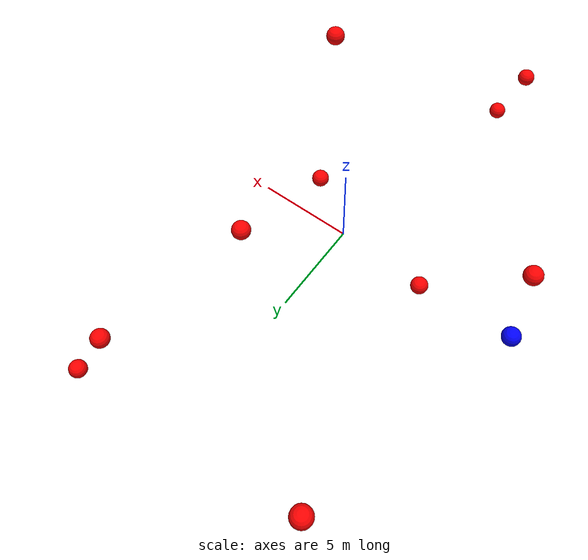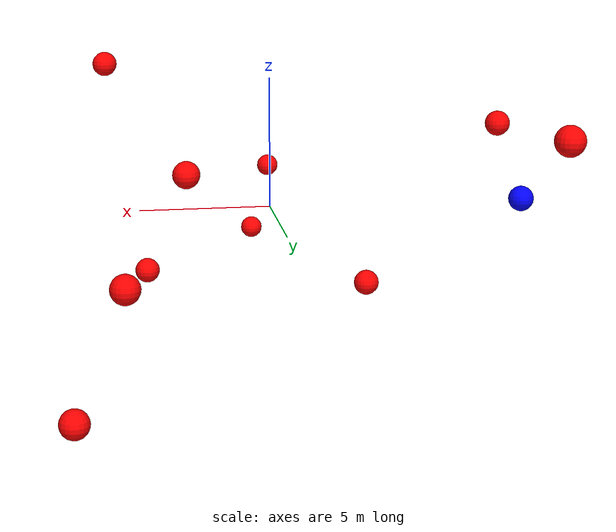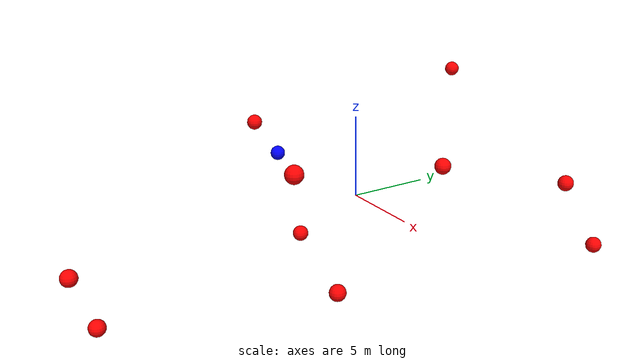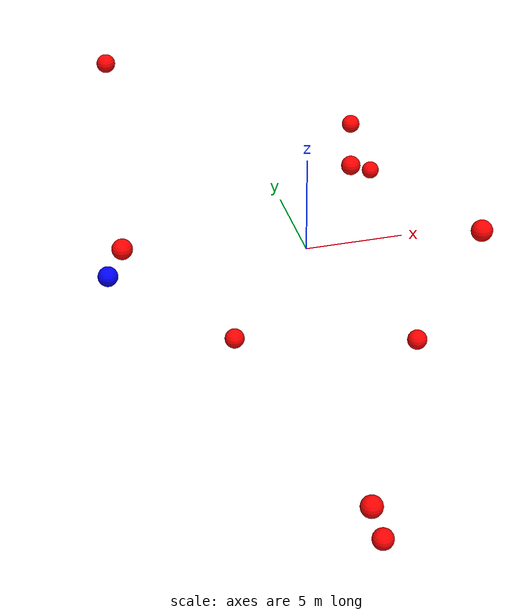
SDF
<?xml version="1.0" ?>
<sdf version="1.8">
    <world name="3d_world">
        <physics name="1ms" type="ode">
            <max_step_size>0.001</max_step_size>
            <real_time_factor>1.0</real_time_factor>
            <real_time_update_rate>1000.0</real_time_update_rate>
        </physics>
        <gravity>0 0 0</gravity>

        <plugin
            filename="gz-sim-physics-system"
            name="gz::sim::v8::systems::Physics">
        </plugin>
        <plugin
            filename="libignition-gazebo-user-commands-system.so"
            name="ignition::gazebo::systems::UserCommands">
        </plugin>
        <plugin
            filename="gz-sim-scene-broadcaster-system"
            name="gz::sim::systems::SceneBroadcaster">
        </plugin>
        <plugin
            filename="gz-sim-sensors-system"
            name="gz::sim::systems::Sensors">
            <render_engine>ogre2</render_engine>
        </plugin>

        <light type="directional" name="sun">
            <cast_shadows>true</cast_shadows>
            <pose>0 0 10 0 0 0</pose>
            <diffuse>0.8 0.8 0.8 1</diffuse>
            <specular>0.2 0.2 0.2 1</specular>
            <attenuation>
                <range>1000</range>
                <constant>0.9</constant>
                <linear>0.01</linear>
                <quadratic>0.001</quadratic>
            </attenuation>
            <direction>-0.5 0.1 -0.9</direction>
        </light>

        <!-- AGENTE -->
        <model name='agente' canonical_link='chassis'>
            <pose relative_to='world'>-10.0 0 0.0 0 0 0</pose>
            <link name='chassis'>
                <pose relative_to='__model__'>0.0 0 0.0 0 0 0</pose>
                <inertial>
                    <mass>1.14395</mass>
                    <inertia>
                        <ixx>0.095329</ixx>
                        <ixy>0</ixy>
                        <ixz>0</ixz>
                        <iyy>0.381317</iyy>
                        <iyz>0</iyz>
                        <izz>0.476646</izz>
                    </inertia>
                </inertial>
                <visual name='visual'>
                    <geometry>
                        <sphere>
                            <radius>0.5</radius>
                        </sphere>
                    </geometry>
                    <material>
                        <ambient>0.0 0.0 1.0 1</ambient>
                        <diffuse>0.0 0.0 1.0 1</diffuse>
                        <specular>0.0 0.0 1.0 1</specular>
                    </material>
                </visual>
                <collision name='collision'>
                    <geometry>
                        <sphere>
                            <radius>0.5</radius>
                        </sphere>
                    </geometry>
                </collision>
                <enable_gravity>false</enable_gravity>
            </link>

            <link name='lidar_link'>
                <pose relative_to='chassis'>0.0 0 0.1 0 0 0</pose>
                <inertial>
                    <mass>0.1</mass>
                    <inertia>
                        <ixx>0.000166667</ixx>
                        <iyy>0.000166667</iyy>
                        <izz>0.000166667</izz>
                    </inertia>
                </inertial>
                <collision name='collision'>
                    <geometry>
                        <cylinder>
                            <radius>0.05</radius>
                            <length>0.1</length>
                        </cylinder>
                    </geometry>
                </collision>
                <visual name='visual'>
                    <geometry>
                        <cylinder>
                            <radius>0.05</radius>
                            <length>0.1</length>
                        </cylinder>
                    </geometry>
                    <material>
                        <ambient>0.0 1.0 0.0 1</ambient>
                        <diffuse>0.0 1.0 0.0 1</diffuse>
                        <specular>0.0 1.0 0.0 1</specular>
                    </material>
                </visual>
                <sensor name="lidar" type="gpu_lidar">
                    <topic>scan</topic>
                    <update_rate>10</update_rate>
                    <lidar>
                        <scan>
                            <horizontal>
                                <samples>5000</samples>
                                <resolution>1</resolution>
                                <min_angle>-3.14159</min_angle>
                                <max_angle>3.14159</max_angle>
                            </horizontal>
                        </scan>
                        <range>
                            <min>0.1</min>
                            <max>10.0</max>
                            <resolution>0.01</resolution>
                        </range>
                    </lidar>
                    <visualize>true</visualize>
                    <always_on>true</always_on>
                    <update_rate>10</update_rate>
                    <pose_frame>lidar</pose_frame>
                </sensor>
                <enable_gravity>false</enable_gravity>
            </link>

            <joint name="lidar_joint" type="fixed">
                <parent>chassis</parent>
                <child>lidar_link</child>
            </joint>

            <plugin
                filename="ignition-gazebo-joint-state-publisher-system"
                name="ignition::gazebo::systems::JointStatePublisher">
            </plugin>
            <plugin
                filename="ignition-gazebo-odometry-publisher-system"
                name="ignition::gazebo::systems::OdometryPublisher">
                <dimensions>3</dimensions>
            </plugin>
            <plugin
                filename="ignition-gazebo-velocity-control-system"
                name="ignition::gazebo::systems::VelocityControl">
                <initial_linear>0.0 0 0</initial_linear>
                <initial_angular>0 0 0.0</initial_angular>
            </plugin>
            <plugin
                filename="libignition-gazebo-pose-publisher-system.so"
                name="ignition::gazebo::systems::PosePublisher">
                <topic>/agente/pose</topic>
                <frame_id>agente</frame_id>
                <update_rate>30</update_rate>
            </plugin>
        </model>

        <!-- OBSTACLE 1 -->
        <model name='obstacle_1' canonical_link='obstacle'>
            <static>false</static>
            <pose relative_to='world'>-4.12 -1.62 -3.64 0 0 0</pose>
            <link name='obstacle'>
                <pose relative_to='__model__'>0.0 0 0.0 0 0 0</pose>
                <visual name='visual'>
                    <geometry>
                        <sphere>
                            <radius>0.50</radius>
                        </sphere>
                    </geometry>
                    <material>
                        <ambient>1.0 0.0 0.0 1</ambient>
                        <diffuse>1.0 0.0 0.0 1</diffuse>
                        <specular>1.0 0.0 0.0 1</specular>
                    </material>
                </visual>
                <collision name='collision'>
                    <geometry>
                        <sphere>
                            <radius>0.50</radius>
                        </sphere>
                    </geometry>
                </collision>
                <enable_gravity>false</enable_gravity>
            </link>

            <plugin
                filename="ignition-gazebo-velocity-control-system"
                name="ignition::gazebo::systems::VelocityControl">
                <initial_linear>1.66 0.23 0.52</initial_linear>
                <initial_angular>0 0 0</initial_angular>
            </plugin>

            <plugin
                filename="ignition-gazebo-odometry-publisher-system"
                name="ignition::gazebo::systems::OdometryPublisher">
                <dimensions>3</dimensions>
            </plugin>
        </model>

        <!-- OBSTACLE 2 -->
        <model name='obstacle_2' canonical_link='obstacle'>
            <static>false</static>
            <pose relative_to='world'>3.48 3.92 2.15 0 0 0</pose>
            <link name='obstacle'>
                <pose relative_to='__model__'>0.0 0 0.0 0 0 0</pose>
                <visual name='visual'>
                    <geometry>
                        <sphere>
                            <radius>0.50</radius>
                        </sphere>
                    </geometry>
                    <material>
                        <ambient>1.0 0.0 0.0 1</ambient>
                        <diffuse>1.0 0.0 0.0 1</diffuse>
                        <specular>1.0 0.0 0.0 1</specular>
                    </material>
                </visual>
                <collision name='collision'>
                    <geometry>
                        <sphere>
                            <radius>0.50</radius>
                        </sphere>
                    </geometry>
                </collision>
                <enable_gravity>false</enable_gravity>
            </link>

            <plugin
                filename="ignition-gazebo-velocity-control-system"
                name="ignition::gazebo::systems::VelocityControl">
                <initial_linear>-0.83 -0.97 -0.53</initial_linear>
                <initial_angular>0 0 0</initial_angular>
            </plugin>

            <plugin
                filename="ignition-gazebo-odometry-publisher-system"
                name="ignition::gazebo::systems::OdometryPublisher">
                <dimensions>3</dimensions>
            </plugin>
        </model>

        <!-- OBSTACLE 3 -->
        <model name='obstacle_3' canonical_link='obstacle'>
            <static>false</static>
            <pose relative_to='world'>-2.00 -17.10 -1.80 0 0 0</pose>
            <link name='obstacle'>
                <pose relative_to='__model__'>0.0 0 0.0 0 0 0</pose>
                <visual name='visual'>
                    <geometry>
                        <sphere>
                            <radius>0.50</radius>
                        </sphere>
                    </geometry>
                    <material>
                        <ambient>1.0 0.0 0.0 1</ambient>
                        <diffuse>1.0 0.0 0.0 1</diffuse>
                        <specular>1.0 0.0 0.0 1</specular>
                    </material>
                </visual>
                <collision name='collision'>
                    <geometry>
                        <sphere>
                            <radius>0.50</radius>
                        </sphere>
                    </geometry>
                </collision>
                <enable_gravity>false</enable_gravity>
            </link>

            <plugin
                filename="ignition-gazebo-velocity-control-system"
                name="ignition::gazebo::systems::VelocityControl">
                <initial_linear>0.05 1.99 0.21</initial_linear>
                <initial_angular>0 0 0</initial_angular>
            </plugin>

            <plugin
                filename="ignition-gazebo-odometry-publisher-system"
                name="ignition::gazebo::systems::OdometryPublisher">
                <dimensions>3</dimensions>
            </plugin>
        </model>

        <!-- OBSTACLE 4 -->
        <model name='obstacle_4' canonical_link='obstacle'>
            <static>false</static>
            <pose relative_to='world'>-1.08 -16.15 -4.68 0 0 0</pose>
            <link name='obstacle'>
                <pose relative_to='__model__'>0.0 0 0.0 0 0 0</pose>
                <visual name='visual'>
                    <geometry>
                        <sphere>
                            <radius>0.50</radius>
                        </sphere>
                    </geometry>
                    <material>
                        <ambient>1.0 0.0 0.0 1</ambient>
                        <diffuse>1.0 0.0 0.0 1</diffuse>
                        <specular>1.0 0.0 0.0 1</specular>
                    </material>
                </visual>
                <collision name='collision'>
                    <geometry>
                        <sphere>
                            <radius>0.50</radius>
                        </sphere>
                    </geometry>
                </collision>
                <enable_gravity>false</enable_gravity>
            </link>

            <plugin
                filename="ignition-gazebo-velocity-control-system"
                name="ignition::gazebo::systems::VelocityControl">
                <initial_linear>0.05 1.92 0.56</initial_linear>
                <initial_angular>0 0 0</initial_angular>
            </plugin>

            <plugin
                filename="ignition-gazebo-odometry-publisher-system"
                name="ignition::gazebo::systems::OdometryPublisher">
                <dimensions>3</dimensions>
            </plugin>
        </model>

        <!-- OBSTACLE 5 -->
        <model name='obstacle_5' canonical_link='obstacle'>
            <static>false</static>
            <pose relative_to='world'>-9.49 -1.97 2.69 0 0 0</pose>
            <link name='obstacle'>
                <pose relative_to='__model__'>0.0 0 0.0 0 0 0</pose>
                <visual name='visual'>
                    <geometry>
                        <sphere>
                            <radius>0.50</radius>
                        </sphere>
                    </geometry>
                    <material>
                        <ambient>1.0 0.0 0.0 1</ambient>
                        <diffuse>1.0 0.0 0.0 1</diffuse>
                        <specular>1.0 0.0 0.0 1</specular>
                    </material>
                </visual>
                <collision name='collision'>
                    <geometry>
                        <sphere>
                            <radius>0.50</radius>
                        </sphere>
                    </geometry>
                </collision>
                <enable_gravity>false</enable_gravity>
            </link>

            <plugin
                filename="ignition-gazebo-velocity-control-system"
                name="ignition::gazebo::systems::VelocityControl">
                <initial_linear>1.75 0.57 -0.78</initial_linear>
                <initial_angular>0 0 0</initial_angular>
            </plugin>

            <plugin
                filename="ignition-gazebo-odometry-publisher-system"
                name="ignition::gazebo::systems::OdometryPublisher">
                <dimensions>3</dimensions>
            </plugin>
        </model>

        <!-- OBSTACLE 6 -->
        <model name='obstacle_6' canonical_link='obstacle'>
            <static>false</static>
            <pose relative_to='world'>7.68 13.06 -3.66 0 0 0</pose>
            <link name='obstacle'>
                <pose relative_to='__model__'>0.0 0 0.0 0 0 0</pose>
                <visual name='visual'>
                    <geometry>
                        <sphere>
                            <radius>0.50</radius>
                        </sphere>
                    </geometry>
                    <material>
                        <ambient>1.0 0.0 0.0 1</ambient>
                        <diffuse>1.0 0.0 0.0 1</diffuse>
                        <specular>1.0 0.0 0.0 1</specular>
                    </material>
                </visual>
                <collision name='collision'>
                    <geometry>
                        <sphere>
                            <radius>0.50</radius>
                        </sphere>
                    </geometry>
                </collision>
                <enable_gravity>false</enable_gravity>
            </link>

            <plugin
                filename="ignition-gazebo-velocity-control-system"
                name="ignition::gazebo::systems::VelocityControl">
                <initial_linear>-0.15 -1.92 0.54</initial_linear>
                <initial_angular>0 0 0</initial_angular>
            </plugin>

            <plugin
                filename="ignition-gazebo-odometry-publisher-system"
                name="ignition::gazebo::systems::OdometryPublisher">
                <dimensions>3</dimensions>
            </plugin>
        </model>

        <!-- OBSTACLE 7 -->
        <model name='obstacle_7' canonical_link='obstacle'>
            <static>false</static>
            <pose relative_to='world'>5.99 11.88 0.23 0 0 0</pose>
            <link name='obstacle'>
                <pose relative_to='__model__'>0.0 0 0.0 0 0 0</pose>
                <visual name='visual'>
                    <geometry>
                        <sphere>
                            <radius>0.50</radius>
                        </sphere>
                    </geometry>
                    <material>
                        <ambient>1.0 0.0 0.0 1</ambient>
                        <diffuse>1.0 0.0 0.0 1</diffuse>
                        <specular>1.0 0.0 0.0 1</specular>
                    </material>
                </visual>
                <collision name='collision'>
                    <geometry>
                        <sphere>
                            <radius>0.50</radius>
                        </sphere>
                    </geometry>
                </collision>
                <enable_gravity>false</enable_gravity>
            </link>

            <plugin
                filename="ignition-gazebo-velocity-control-system"
                name="ignition::gazebo::systems::VelocityControl">
                <initial_linear>-0.27 -1.98 -0.04</initial_linear>
                <initial_angular>0 0 0</initial_angular>
            </plugin>

            <plugin
                filename="ignition-gazebo-odometry-publisher-system"
                name="ignition::gazebo::systems::OdometryPublisher">
                <dimensions>3</dimensions>
            </plugin>
        </model>

        <!-- OBSTACLE 8 -->
        <model name='obstacle_8' canonical_link='obstacle'>
            <static>false</static>
            <pose relative_to='world'>6.02 -7.62 4.63 0 0 0</pose>
            <link name='obstacle'>
                <pose relative_to='__model__'>0.0 0 0.0 0 0 0</pose>
                <visual name='visual'>
                    <geometry>
                        <sphere>
                            <radius>0.50</radius>
                        </sphere>
                    </geometry>
                    <material>
                        <ambient>1.0 0.0 0.0 1</ambient>
                        <diffuse>1.0 0.0 0.0 1</diffuse>
                        <specular>1.0 0.0 0.0 1</specular>
                    </material>
                </visual>
                <collision name='collision'>
                    <geometry>
                        <sphere>
                            <radius>0.50</radius>
                        </sphere>
                    </geometry>
                </collision>
                <enable_gravity>false</enable_gravity>
            </link>

            <plugin
                filename="ignition-gazebo-velocity-control-system"
                name="ignition::gazebo::systems::VelocityControl">
                <initial_linear>-0.64 1.49 -0.91</initial_linear>
                <initial_angular>0 0 0</initial_angular>
            </plugin>

            <plugin
                filename="ignition-gazebo-odometry-publisher-system"
                name="ignition::gazebo::systems::OdometryPublisher">
                <dimensions>3</dimensions>
            </plugin>
        </model>

        <!-- OBSTACLE 9 -->
        <model name='obstacle_9' canonical_link='obstacle'>
            <static>false</static>
            <pose relative_to='world'>-7.56 13.59 4.85 0 0 0</pose>
            <link name='obstacle'>
                <pose relative_to='__model__'>0.0 0 0.0 0 0 0</pose>
                <visual name='visual'>
                    <geometry>
                        <sphere>
                            <radius>0.50</radius>
                        </sphere>
                    </geometry>
                    <material>
                        <ambient>1.0 0.0 0.0 1</ambient>
                        <diffuse>1.0 0.0 0.0 1</diffuse>
                        <specular>1.0 0.0 0.0 1</specular>
                    </material>
                </visual>
                <collision name='collision'>
                    <geometry>
                        <sphere>
                            <radius>0.50</radius>
                        </sphere>
                    </geometry>
                </collision>
                <enable_gravity>false</enable_gravity>
            </link>

            <plugin
                filename="ignition-gazebo-velocity-control-system"
                name="ignition::gazebo::systems::VelocityControl">
                <initial_linear>1.36 -1.38 -0.49</initial_linear>
                <initial_angular>0 0 0</initial_angular>
            </plugin>

            <plugin
                filename="ignition-gazebo-odometry-publisher-system"
                name="ignition::gazebo::systems::OdometryPublisher">
                <dimensions>3</dimensions>
            </plugin>
        </model>

        <!-- OBSTACLE 10 -->
        <model name='obstacle_10' canonical_link='obstacle'>
            <static>false</static>
            <pose relative_to='world'>4.57 -4.23 -3.49 0 0 0</pose>
            <link name='obstacle'>
                <pose relative_to='__model__'>0.0 0 0.0 0 0 0</pose>
                <visual name='visual'>
                    <geometry>
                        <sphere>
                            <radius>0.50</radius>
                        </sphere>
                    </geometry>
                    <material>
                        <ambient>1.0 0.0 0.0 1</ambient>
                        <diffuse>1.0 0.0 0.0 1</diffuse>
                        <specular>1.0 0.0 0.0 1</specular>
                    </material>
                </visual>
                <collision name='collision'>
                    <geometry>
                        <sphere>
                            <radius>0.50</radius>
                        </sphere>
                    </geometry>
                </collision>
                <enable_gravity>false</enable_gravity>
            </link>

            <plugin
                filename="ignition-gazebo-velocity-control-system"
                name="ignition::gazebo::systems::VelocityControl">
                <initial_linear>0.30 0.64 0.53</initial_linear>
                <initial_angular>0 0 0</initial_angular>
            </plugin>

            <plugin
                filename="ignition-gazebo-odometry-publisher-system"
                name="ignition::gazebo::systems::OdometryPublisher">
                <dimensions>3</dimensions>
            </plugin>
        </model>

    </world>
</sdf>
